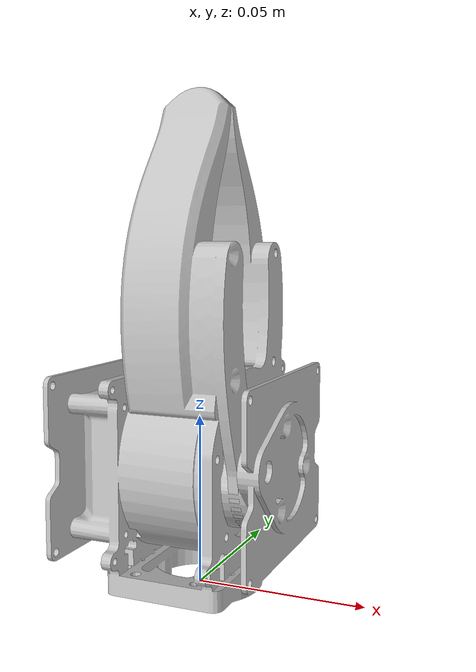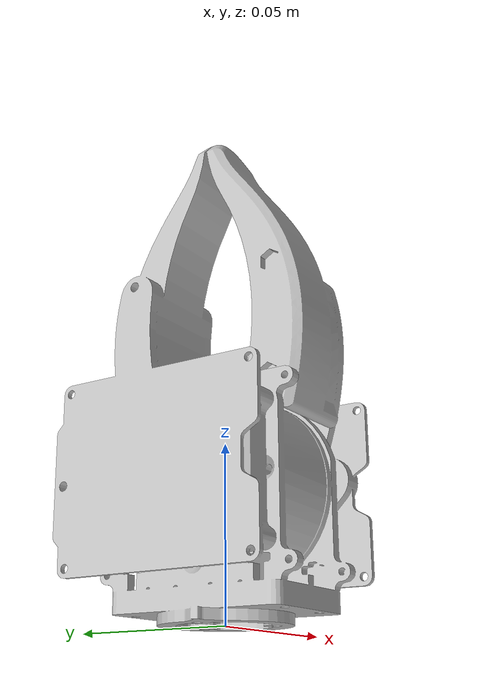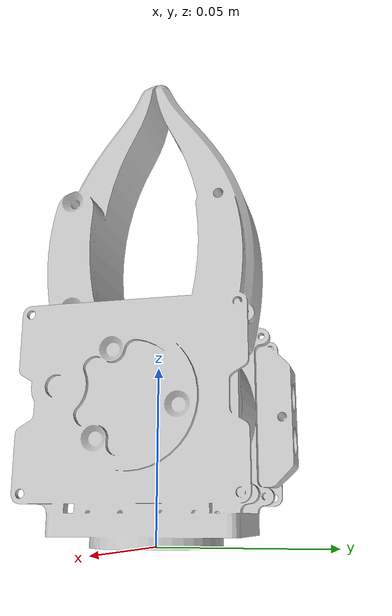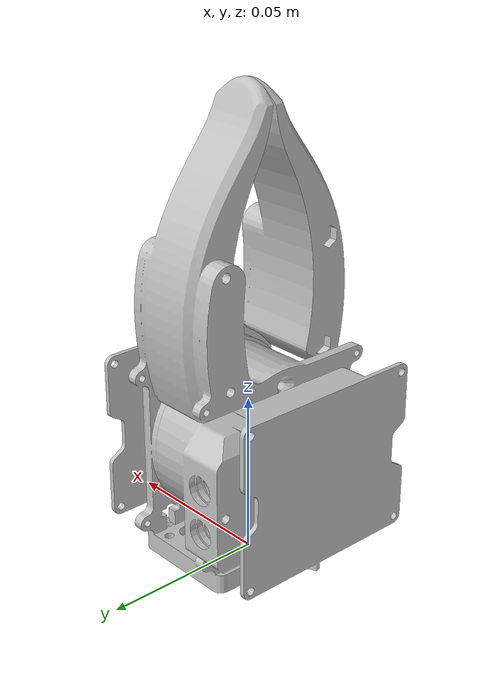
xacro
<?xml version="1.0"?>
<robot xmlns:xacro="http://www.ros.org/wiki/xacro" name="crab_claw_v1">

    <xacro:arg name="bam_descriptions" default="$(find bam_descriptions)"/>

    <xacro:include filename="$(arg bam_descriptions)/urdf/common.xacro" />

    <xacro:arg name="plugin" default="none"/>  <!-- none, mock, gazebo, real -->
    <xacro:arg name="prefix" default=""/>
    <xacro:arg name="reflect" default="1"/>

    <xacro:arg name="world_xyz" default="0 0 0"/>
    <xacro:arg name="world_rpy" default="0 0 0"/>
    <xacro:arg name="base_xyz" default="0 0 0"/>
    <xacro:arg name="base_rpy" default="0 0 0"/>

    <xacro:arg name="disable_floating_tcp" default="false"/>

    <xacro:property name="plugin" value="$(arg plugin)" />
    <xacro:property name="reflect" value="$(arg reflect)" />
    <xacro:property name="prefix" value="$(arg prefix)" />

    <xacro:property name="world_xyz" value="$(arg world_xyz)" />
    <xacro:property name="world_rpy" value="$(arg world_rpy)" />
    <xacro:property name="base_xyz" value="$(arg base_xyz)" />
    <xacro:property name="base_rpy" value="$(arg base_rpy)" />

    <xacro:if value="${plugin != 'none'}">
        <xacro:include filename="$(arg bam_descriptions)/urdf/hybrid_v1/crab_claw_v1.ros2_control.xacro"/>
        <xacro:gripper_v1_ros2_control prefix="${prefix}" plugin="${plugin}"/>
    </xacro:if>

    <link name="world"/>

    <joint name="world_to_base" type="fixed">
        <parent link="world"/>
        <child link="base_link"/>
    </joint>

   <link name="base_link"/>

    <joint name="base_link_joint" type="fixed">
        <origin xyz="${base_xyz}" rpy="${base_rpy}"/>
        <parent link="base_link"/>
        <child link="${prefix}eef_link_1"/>
    </joint>

    <xacro:include filename="$(arg bam_descriptions)/urdf/crab_claw_v1/crab_claw_v1_macro.xacro" />
    <xacro:crab_claw_v1 prefix="${prefix}" reflect="${reflect}" disable_floating_tcp="false"/>

</robot>

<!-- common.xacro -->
<robot xmlns:xacro="http://www.ros.org/wiki/xacro">

  <xacro:property name="deg2rad" value="${pi/180}"/>
  <xacro:property name="rev2rad" value="${2*pi}"/>
  <xacro:property name="inch2m" value="${25.4/1000}"/>
  <xacro:property name="mm2m" value="${1/1000}"/>

  <xacro:macro name="cylinder_tube_link" params="name outer_radius inner_radius length density origin_offset mass=-1 material='StoglRobotics/LightGrey'">
    <!-- Length goes along z axis -->

      <link name="${name}">

        <xacro:if value="${mass == -1}">
          <xacro:property name="outer_area" value="${outer_radius * outer_radius * pi}"/>
          <xacro:property name="inner_area" value="${inner_radius * inner_radius * pi}"/>
          <xacro:property name="volume" value="${length * (outer_area - inner_area)}"/>
          <xacro:property name="mass" value="${volume * density}"/>
        </xacro:if>

        <visual>
          <origin xyz="0 0 ${origin_offset}" rpy="0 0 0"/>
          <geometry>
              <cylinder length="${length}" radius="${outer_radius}"/>
          </geometry>
          <material name="${material}"/>
        </visual>

        <collision>
          <origin xyz="0 0 ${origin_offset}" rpy="0 0 0"/>
          <geometry>
              <cylinder length="${length}" radius="${outer_radius}"/>
          </geometry>
        </collision>

        <xacro:cylinder_inertial length="${length}" outer_radius="${outer_radius}" inner_radius="${inner_radius}" mass="${mass}" origin_xyz="0 0 ${origin_offset}"/>

      </link>
  </xacro:macro>

  <xacro:macro name="rectangular_tube_link"
      params="name width length height wall_thickness density origin_offset mass=-1 material='StoglRobotics/LightGrey'"> -->

      <!-- Length goes along y, width goes along x, height goes along z -->

      <!-- length goes from hole to hole, while link_total_length goes from outer edge to outer edge. To center link around holes, add width/2 to both ends -->
      <xacro:if value="${mass == -1}">
        <xacro:property name="outer_area" value="${width * height}"/>
        <xacro:property name="inner_area" value="${(width - 2*wall_thickness) * (height - 2*wall_thickness)}"/>
        <xacro:property name="volume" value="${length * (outer_area - inner_area)}"/>
        <xacro:property name="mass" value="${volume * density}"/>
      </xacro:if>

      <link name="${name}">

        <!-- It may make more sense to have origin in center of thickness, but when you export as cade, usally is done from edge -->
        <visual>
            <origin xyz="0 ${origin_offset} ${height/2}" rpy="0 0 0"/>
            <geometry>
                <box size="${width} ${length} ${height}"/>
            </geometry>
            <material name="${material}"/>
        </visual>

        <collision>
            <origin xyz="0 ${origin_offset} ${height/2}" rpy="0 0 0"/>
            <geometry>
                <box size="${width} ${length} ${height}"/>
            </geometry>
        </collision>

        <xacro:solid_cuboid_inertial width="${width}" height="${length}" depth="${height}" mass="${mass}" origin_xyz="0 ${origin_offset} ${height/2}"/>
      </link>

  </xacro:macro>

  <xacro:macro name="rectangular_plate_link" params="name width length plate_thickness density origin_offset mass=-1 material='StoglRobotics/LightGrey'">
      <!-- Origin offset is usally length/2 or length/2 + width/2 + width/2  -->
      <!-- length goes from hole to hole, while link_total_length goes from outer edge to outer edge. To center link around holes, add width/2 to both ends -->

      <!-- Length goes along y, width goes along x, thickness goes along z -->

      <xacro:if value="${mass == -1}">
        <xacro:property name="volume" value="${length * width * plate_thickness}"/>
        <xacro:property name="mass" value="${volume * density}"/>
      </xacro:if>

      <!-- It may make more sense to have origin in center of thickness, but when you export as cade, usally is done from edge -->
      <link name="${name}">

      <visual>
          <origin xyz="0 ${origin_offset} ${plate_thickness/2}" rpy="0 0 0"/>
          <geometry>
              <box size="${width} ${length} ${plate_thickness}"/>
          </geometry>
          <material name="${material}"/>
      </visual>

      <collision>
          <origin xyz="0 ${origin_offset} ${plate_thickness/2}" rpy="0 0 0"/>
          <geometry>
              <box size="${width} ${length} ${plate_thickness}"/>
          </geometry>
      </collision>

      <xacro:solid_cuboid_inertial width="${width}" height="${length}" depth="${plate_thickness}" mass="${mass}" origin_xyz="0 ${origin_offset} ${plate_thickness/2}"/>
      </link>

  </xacro:macro>

  <!-- https://en.wikipedia.org/wiki/List_of_moments_of_inertia#:~:text=Solid%20cuboid%20of%20width -->
  <!-- Inertia properties for wrist_link, scoped to this macro only -->
  <!-- Width goes along x, height goes along y, depth goes along z -->
  <xacro:macro name="solid_cuboid_inertial" params="width height depth mass origin_xyz">
      <xacro:property name="inertia_xx" value="${(1/12) * mass * (height * height + depth * depth)}"/>
      <xacro:property name="inertia_yy" value="${(1/12) * mass * (width * width + depth * depth)}"/>
      <xacro:property name="inertia_zz" value="${(1/12) * mass * (width * width + height * height)}"/>
      <inertial>
          <origin xyz="${origin_xyz}"/>
          <mass value="${mass}"/>
          <inertia ixx="${inertia_xx}" ixy="0" ixz="0"
                    iyy="${inertia_yy}" iyz="0"
                    izz="${inertia_zz}"/>
      </inertial>
  </xacro:macro>

  <!-- https://en.wikipedia.org/wiki/List_of_moments_of_inertia#:~:text=%5D-,Solid%20cylinder%20of,-radius%20r%2C%20height -->
  <!-- Inertia properties for motor block, scoped to this macro only -->
  <!-- I initally thought it should be outer_radius - inner_radius, but actually a hollow cylinder should have a higher interia! as more mass further away -->
  <xacro:macro name="cylinder_inertial" params="length outer_radius mass origin_xyz inner_radius=0">
      <xacro:property name="inertia_xx" value="${(1/12) * mass * (3*(outer_radius*outer_radius + inner_radius*inner_radius) + length*length)}"/>
      <xacro:property name="inertia_yy" value="${(1/12) * mass * (3*(outer_radius*outer_radius + inner_radius*inner_radius) + length*length)}"/>
      <xacro:property name="inertia_zz" value="${0.5*mass*(outer_radius*outer_radius + inner_radius*inner_radius)}"/>
      <inertial>
          <origin xyz="${origin_xyz}"/>
          <mass value="${mass}"/>
          <inertia ixx="${inertia_xx}" ixy="0" ixz="0"
                    iyy="${inertia_yy}" iyz="0"
                    izz="${inertia_zz}"/>
      </inertial>
  </xacro:macro>

<xacro:macro name="dummy_inertial">
<!-- Super small interia to not effect dynamics and small rviz interia box -->
    <inertial>
        <mass value="0.0001"/>
        <origin xyz="0 0 0" rpy="0 0 0"/>
        <inertia
            ixx="0.001" ixy="0.00001" ixz="0.00001"
            iyy="0.001" iyz="0.00001"
            izz="0.001"/>
    </inertial>
</xacro:macro>

<xacro:macro name="dummy_link">

  <!-- Small visual box so that link can be turned off in rviz -->
  <visual>
    <origin xyz="0 0 0" rpy="0 0 0"/>
    <geometry>
      <box size="0.001 0.001 0.001"/>
    </geometry>
    <material name="transparent_gray">
      <color rgba="0.5 0.5 0.5 0.1"/>
    </material>
  </visual>

  <xacro:dummy_inertial/>

</xacro:macro>

  <material name="StoglRobotics/Violet">
    <color rgba="${102/255} ${46/255} ${145/255} 1.0"/>
    <ambient>1 0 0 1</ambient>
    <diffuse>1 0 0 1</diffuse>
    <specular>0.1 0.1 0.1 1</specular>
    <emissive>0 0 0 0</emissive>
  </material>

  <material name="StoglRobotics/DarkGrey">
    <color rgba="${51/255} ${51/255} ${51/255} 1.0"/>
    <ambient>1 0 0 1</ambient>
    <diffuse>1 0 0 1</diffuse>
    <specular>0.1 0.1 0.1 1</specular>
    <emissive>0 0 0 0</emissive>
  </material>

  <material name="StoglRobotics/LightGrey">
    <color rgba="${194/255} ${194/255} ${194/255} 1.0"/>
    <ambient>1 0 0 1</ambient>
    <diffuse>1 0 0 1</diffuse>
    <specular>0.1 0.1 0.1 1</specular>
    <emissive>0 0 0 0</emissive>
  </material>

  <material name="Ghost">
    <color rgba="${194/255} ${194/255} ${194/255} 0.5"/>
    <ambient>1 0 0 1</ambient>
    <diffuse>1 0 0 1</diffuse>
    <specular>0.1 0.1 0.1 1</specular>
    <emissive>0 0 0 0</emissive>
  </material>

  <material name="Black">
    <color rgba="${0/255} ${0/255} ${0/255} 1"/>
    <ambient>1 0 0 1</ambient>
    <diffuse>1 0 0 1</diffuse>
    <specular>0.1 0.1 0.1 1</specular>
    <emissive>0 0 0 0</emissive>
  </material>

  <material name="White">
    <color rgba="${255/255} ${255/255} ${255/255} 1"/>
    <ambient>1 0 0 1</ambient>
    <diffuse>1 0 0 1</diffuse>
    <specular>0.1 0.1 0.1 1</specular>
    <emissive>0 0 0 0</emissive>
  </material>

  <material name="Red">
    <color rgba="1.0 0.0 0.0 1.0"/>
    <ambient>1 0 0 1</ambient>
    <diffuse>1 0 0 1</diffuse>
    <specular>0.1 0.1 0.1 1</specular>
    <emissive>0 0 0 0</emissive>
  </material>

  <material name="Orange">
    <color rgba="1.0 0.55 0.0 1.0"/>
    <ambient>1 0.5 0 1</ambient>
    <diffuse>1 0.5 0 1</diffuse>
    <specular>0.1 0.1 0.1 1</specular>
    <emissive>0 0 0 0</emissive>
  </material>

  <material name="Yellow">
    <color rgba="1.0 1.0 0.0 1.0"/>
    <ambient>1 1 0 1</ambient>
    <diffuse>1 1 0 1</diffuse>
    <specular>0.1 0.1 0.1 1</specular>
    <emissive>0 0 0 0</emissive>
  </material>

  <material name="Green">
    <color rgba="0.0 1.0 0.0 1.0"/>
    <ambient>0 1 0 1</ambient>
    <diffuse>0 1 0 1</diffuse>
    <specular>0.1 0.1 0.1 1</specular>
    <emissive>0 0 0 0</emissive>
  </material>

  <material name="Blue">
    <color rgba="0.0 0.0 1.0 1.0"/>
    <ambient>0 0 1 1</ambient>
    <diffuse>0 0 1 1</diffuse>
    <specular>0.1 0.1 0.1 1</specular>
    <emissive>0 0 0 0</emissive>
  </material>

  <material name="Indigo">
    <color rgba="0.29 0.0 0.51 1.0"/>
    <ambient>0.25 0 0.45 1</ambient>
    <diffuse>0.25 0 0.45 1</diffuse>
    <specular>0.1 0.1 0.1 1</specular>
    <emissive>0 0 0 0</emissive>
  </material>

  <material name="Violet">
    <color rgba="0.56 0.0 1.0 1.0"/>
    <ambient>0.5 0 1 1</ambient>
    <diffuse>0.5 0 1 1</diffuse>
    <specular>0.1 0.1 0.1 1</specular>
    <emissive>0 0 0 0</emissive>
  </material>

</robot>

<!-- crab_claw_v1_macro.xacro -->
<robot xmlns:xacro="http://wiki.ros.org/xacro" name="crab_claw_v1">

    <xacro:macro name="crab_claw_v1" params="prefix reflect disable_floating_tcp:='false'">

        <link name="${prefix}eef_link_1">
            <visual>
                <origin xyz="0 0 0" rpy="0 0 0" />
                <geometry>
                    <mesh filename="package://bam_descriptions/urdf/crab_claw_v1/meshes/hand.stl" />
                </geometry>
                <material name="StoglRobotics/LightGrey"/>
            </visual>

            <!-- For collision inspiration see other gazebo grippers -->

            <collision>
                <origin xyz="0 0 0" rpy="0 0 0" />
                <geometry>
                    <mesh filename="package://bam_descriptions/urdf/crab_claw_v1/meshes/fixed_finger.stl" />
                </geometry>
            </collision>

            <inertial>
                <origin xyz="-0.000055 0.002094 0.039905"/>
                <mass value="0.273365"/>
                <inertia
                    ixx="2.159000e-04" ixy="-3.180614e-07" ixz="1.297688e-07"
                    iyy="1.938000e-04" iyz="-2.499850e-05"
                    izz="1.044000e-04"/>
            </inertial>
        </link>

        <joint name="${prefix}eef_joint_1" type="revolute">
            <origin xyz="${16.5/1000} 0 ${37.5/1000}" rpy="${pi/2} 0 ${pi/2}" />
            <parent link="${prefix}eef_link_1" />
            <child link="${prefix}eef_link_2" />
            <axis xyz="0 0 1" />
            <limit effort="5.0" lower="0" upper="${pi/2}" velocity="10.0"/>
        </joint>

        <joint name="${prefix}crab_claw_joint" type="fixed">
            <origin xyz="${16.5/1000} 0 ${37.5/1000}" rpy="${pi/2} 0 ${pi/2}" />
            <parent link="${prefix}eef_link_1" />
            <child link="${prefix}crab_claw_center" />
        </joint>

        <!-- Fixed at centered pose of crab claw, doesn't rotate, so its a stable reference -->
        <link name="${prefix}crab_claw_center">
        <!-- Dummy interia for gazebo -->
            <xacro:dummy_inertial/>

        </link>

        <link name="${prefix}eef_link_2">
            <visual>
                <!-- rotate around a bit to close finger in starting position -->
                <geometry>
                    <mesh filename="package://bam_descriptions/urdf/crab_claw_v1/meshes/finger.stl"/>
                </geometry>
                <material name="StoglRobotics/LightGrey"/>
            </visual>

            <collision>
                <origin xyz="0 0 0" rpy="0 0 0" />
                <geometry>
                    <mesh filename="package://bam_descriptions/urdf/crab_claw_v1/meshes/rotating_finger.stl"/>
                </geometry>
            </collision>

            <inertial>
                <origin xyz="-0.017182 0.044419 -0.009845"/>
                <mass value="0.029933"/>
                <inertia
                    ixx="2.294500e-05" ixy="7.081339e-07" ixz="-5.446646e-07"
                    iyy="5.181561e-06" iyz="3.769770e-06"
                    izz="2.285568e-05"/>
            </inertial>
        </link>

        <gazebo reference="${prefix}eef_link_2">
            <selfCollide>'false'</selfCollide>

        </gazebo>

        <link name="${prefix}tcp_world">
            <xacro:dummy_inertial/>
        </link>

        <link name="${prefix}tcp_tool">
            <xacro:dummy_inertial/>
        </link>

        <!-- Easier for Pick and Place as orientated with world -->
        <joint name="${prefix}joint_tcp_world" type="fixed">
            <origin xyz="0 0 ${144/1000}" rpy="${pi} 0 0" />
            <parent link="${prefix}eef_link_1" />
            <child link="${prefix}tcp_world" />
        </joint>

        <joint name="${prefix}joint_tcp_tool" type="fixed">
            <origin xyz="0 0 ${144/1000}" rpy="0 0 0" />
            <parent link="${prefix}eef_link_1" />
            <child link="${prefix}tcp_tool" />
        </joint>

        <xacro:unless value="${disable_floating_tcp}">

            <link name="${prefix}virtual_finger">
                <inertial>
                    <mass value="1e-5"/>
                    <origin xyz="0 0 0" rpy="0 0 0"/>
                    <inertia
                    ixx="1e-6" ixy="0.0" ixz="0.0"
                    iyy="1e-6" iyz="0.0"
                    izz="1e-6"/>
                </inertial>
            </link>

            <joint name="${prefix}joint_virtual_finger" type="revolute">
                <origin xyz="${16.5/1000} 0 ${37.5/1000}" rpy="${pi/2} 0 ${pi/2}" />
                <parent link="${prefix}eef_link_1" />
                <child link="${prefix}virtual_finger" />
                <axis xyz="0 0 1" />
                <mimic joint="${prefix}eef_joint_1" multiplier="0.5" offset="0.0"/>

                <limit effort="5.0" lower="0" upper="${pi/2}" velocity="10.0"/>
            </joint>

            <link name="${prefix}floating_tcp_world">
                <inertial>
                    <mass value="1e-5"/>
                    <origin xyz="0 0 0" rpy="0 0 0"/>
                    <inertia
                    ixx="1e-6" ixy="0.0" ixz="0.0"
                    iyy="1e-6" iyz="0.0"
                    izz="1e-6"/>
                </inertial>
            </link>

            <joint name="${prefix}joint_floating_tcp" type="fixed">
                <parent link="${prefix}virtual_finger"/>
                <child link="${prefix}floating_tcp_world"/>
                <origin xyz="0 ${106.5/1000} ${-16.5/1000}" rpy="${pi/2} ${pi/2} 0"/>
            </joint>
        </xacro:unless>

    </xacro:macro>

    <!-- Standardized alias: make_hand (config_file currently ignored) -->
    <!--
      Universal config loader - makes composite simpler
    -->
    <xacro:macro name="make_config" params="config_file">
      <xacro:make_hand config_file="${config_file}"/>
    </xacro:macro>

    <xacro:macro name="make_hand" params="config_file">

         <xacro:property name="cfg" value="${xacro.load_yaml(config_file)}"/>

        <xacro:crab_claw_v1
            prefix="${cfg['info']['prefix']}"
            reflect="${cfg['args']['reflect']}"
            disable_floating_tcp="${cfg['args']['disable_floating_tcp']}"
        />

    </xacro:macro>

</robot>
